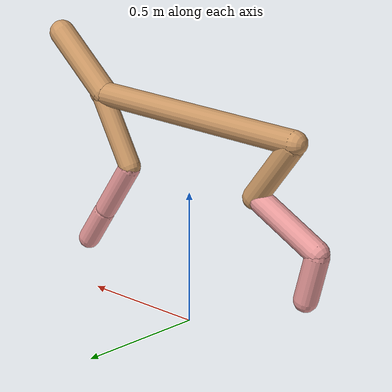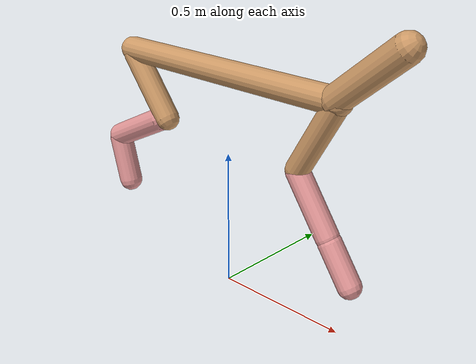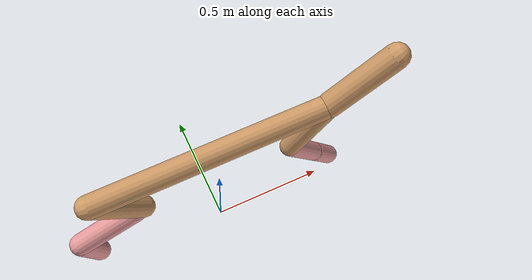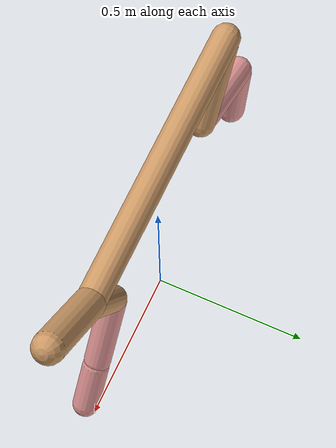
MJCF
<mujoco model="cheetah">
  <compiler angle="radian" coordinate="local" inertiafromgeom="true" settotalmass="14" />
  <default>
    <joint armature=".1" damping=".01" limited="true" solimplimit="0 .8 .03" solreflimit=".02 1" stiffness="8" />
    <geom conaffinity="0" condim="3" contype="1" friction="0.8 .1 .1" rgba="0.8 0.6 .4 1" solimp="0.0 0.8 0.01" solref="0.02 1" />
    <motor ctrllimited="true" ctrlrange="-1 1" />
  </default>
  <size nstack="300000" nuser_geom="1" />
  <option gravity="0 0 -9.81" timestep="0.01" />
  <worldbody>
    <body name="torso" pos="0.0 0.0 0.7918374193418654">
      <joint armature="0" axis="1 0 0" damping="0" limited="false" name="ignorex" pos="0 0 0" stiffness="0" type="slide" />
      <joint armature="0" axis="0 0 1" damping="0" limited="false" name="ignorez" pos="0 0 0" stiffness="0" type="slide" />
      <joint armature="0" axis="0 1 0" damping="0" limited="false" name="ignorey" pos="0 0 0" stiffness="0" type="hinge" />
      <geom fromto="-0.5 0.0 0.0 0.46115652778995 0.0 0.0" name="torso" size="0.04530588186648298" type="capsule" />
      <geom axisangle="0 1 0 .87" name="head" pos="0.56115652778995 0.0 0.1" size="0.04891998373315388 0.15" type="capsule" />

      <body name="bthigh" pos="-.5 0 0">
        <joint axis="0 1 0" damping="6" name="bthigh" pos="0 0 0" range="-.52 1.05" stiffness="240" type="hinge" />
        <geom axisangle="0 1 0 -3.8" name="bthigh" pos="0.09627676205090666 0.0 -0.12515979066617866" size="0.04464576802395573 0.13889343572695906" type="capsule" />
        <body name="bshin" pos="0.15255352410181333 0.0 -0.2403195813323573">
          <joint axis="0 1 0" damping="4.5" name="bshin" pos="0 0 0" range="-.785 .785" stiffness="180" type="hinge" />
          <geom axisangle="0 1 0 -2.03" name="bshin" pos="-0.13434978227993472 0.0 -0.06717489113996736" rgba="0.9 0.6 0.6 1" size="0.04464576802395573 0.14368286454513005" type="capsule" />
          <body name="bfoot" pos="-0.26869956455986943 0.0 -0.13434978227993472">
            <joint axis="0 1 0" damping="3" name="bfoot" pos="0 0 0" range="-.4 .785" stiffness="120" type="hinge" />
            <geom axisangle="0 1 0 -.27" name="bfoot" pos="0.028830312715492735 0.0 -0.09321801111342652" rgba="0.9 0.6 0.6 1" size="0.04464576802395573 0.09004126178161484" type="capsule" />
            <inertial mass="10" />
          </body>
        </body>
      </body>
      <body name="fthigh" pos="0.46115652778995 0.0 0.0">
        <joint axis="0 1 0" damping="4.5" name="fthigh" pos="0 0 0" range="-1.5 0.8" stiffness="180" type="hinge" />
        <geom axisangle="0 1 0 .52" name="fthigh" pos="-0.07643773070134005 0.0 -0.1310361097737258" size="0.04150758105207879 0.14577654474107543" type="capsule" />
        <body name="fshin" pos="-0.1528754614026801 0.0 -0.2620722195474516">
          <joint axis="0 1 0" damping="3" name="fshin" pos="0 0 0" range="-1.2 1.1" stiffness="120" type="hinge" />
          <geom axisangle="0 1 0 -.6" name="fshin" pos="0.07096193912185687 0.0 -0.09825499263026335" rgba="0.9 0.6 0.6 1" size="0.04150758105207879 0.11618281009439095" type="capsule" />
          <body name="ffoot" pos="0.14192387824371375 0.0 -0.1965099852605267">
            <joint axis="0 1 0" damping="1.5" name="ffoot" pos="0 0 0" range="-3.1 -0.3" stiffness="60" type="hinge" />
            <geom axisangle="0 1 0 -.6" name="ffoot" pos="0.048636322926049 0.0 -0.07565650232940956" rgba="0.9 0.6 0.6 1" size="0.04150758105207879 0.07672449723214497" type="capsule" />
            <inertial mass="10" />
          </body>
        </body>
      </body>
    </body>
  </worldbody>
  <actuator>
    <motor gear="120" joint="bthigh" name="bthigh" />
    <motor gear="90" joint="bshin" name="bshin" />
    <motor gear="60" joint="bfoot" name="bfoot" />
    <motor gear="120" joint="fthigh" name="fthigh" />
    <motor gear="60" joint="fshin" name="fshin" />
    <motor gear="30" joint="ffoot" name="ffoot" />
  </actuator>
</mujoco>
